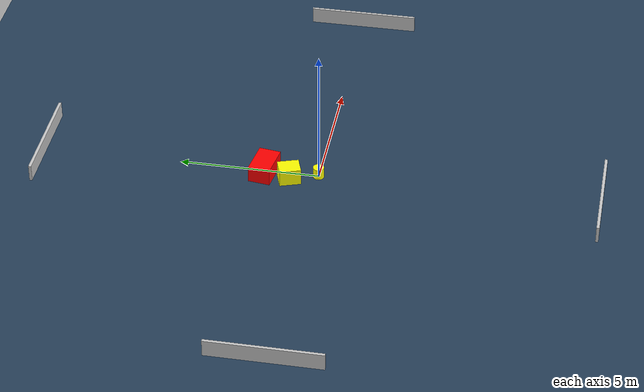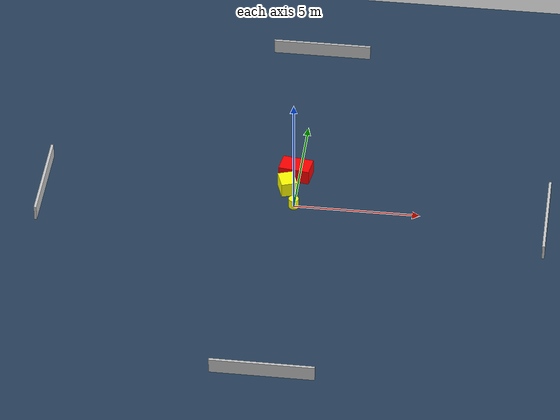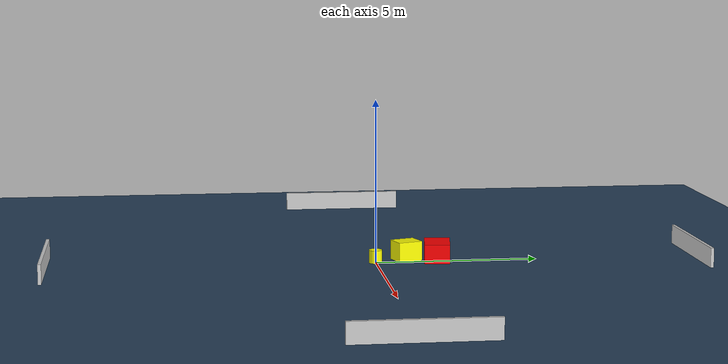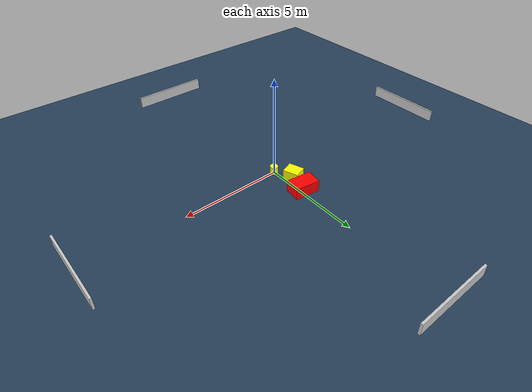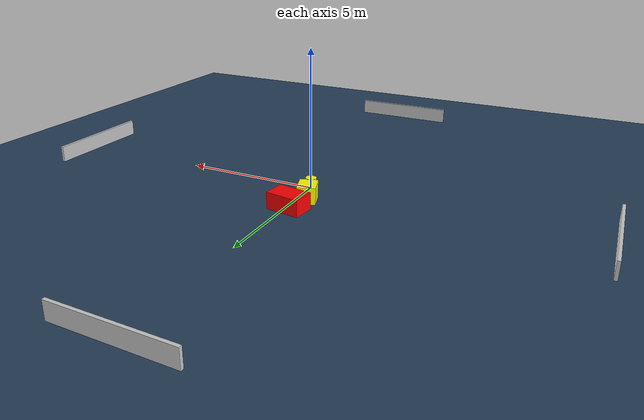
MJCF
<?xml version="1.0" ?>
<mujoco model="generated_environment">
  <option timestep="0.01" integrator="RK4" cone="elliptic"/>
  <default>
    <geom density="1"/>
  </default>
  <asset>
    <texture builtin="gradient" height="3072" name="skybox" rgb1="0.3 0.5 0.7" rgb2="0 0 0" type="skybox" width="512"/>
    <texture builtin="checker" height="300" name="groundplane" rgb1="0.2 0.3 0.4" rgb2="0.1 0.2 0.3" type="2d" width="300"/>
    <material name="groundplane" reflectance="0.2" texrepeat="5 5" texture="groundplane"/>
  </asset>
  <worldbody>
    <light dir="0 0 -1" directional="true" pos="0 0 1.5"/>
    <geom condim="3" friction="0.5 0.005 0.001" material="groundplane" name="floor" pos="0 0 0" size="0 0 0.05" type="plane"/>
    <body name="walls">
      <geom name="wall_1" condim="4" pos="-10.0 0.0 0.3" rgba="0.800000011920929 0.800000011920929 0.800000011920929 1.0" size="0.05 2.0 0.3" type="box"/>
      <geom name="wall_2" condim="4" pos="10.0 0.0 0.3" rgba="0.800000011920929 0.800000011920929 0.800000011920929 1.0" size="0.05 2.0 0.3" type="box"/>
      <geom name="wall_3" condim="4" pos="0.0 -10.0 0.3" rgba="0.800000011920929 0.800000011920929 0.800000011920929 1.0" size="2.0 0.05 0.3" type="box"/>
      <geom name="wall_4" condim="4" pos="0.0 10.0 0.3" rgba="0.800000011920929 0.800000011920929 0.800000011920929 1.0" size="2.0 0.05 0.3" type="box"/>
    </body>
    <body name="robot">
      <joint name="joint_x" type="slide" pos="0 0 0" axis="1 0 0"/>
      <joint name="joint_y" type="slide" pos="0 0 0" axis="0 1 0"/>
      <geom name="robot" type="cylinder" pos="0.0 0.0 0.2" size="0.2 0.2 0.0" mass="5.0" friction="1.0 0.005 0.0001" condim="4" rgba="1.0 1.0 0.0 1.0"/>
    </body>
    <body name="obstacle_1_movable">
      <geom name="obstacle_1_movable" condim="4" pos="-0.367344069772517 0.9972880026865987 0.3" euler="0 0 288.7359700602781" friction="0.0 0.005 0.001" rgba="1.0 1.0 0.0 1.0" size="0.38567632937607466 0.3202990334957445 0.3" type="box" mass="0.1"/>
      <joint type="free"/>
    </body>
    <body name="obstacle_2_static">
      <geom name="obstacle_2_static" condim="4" pos="-0.13959855418491834 1.926621515652359 0.3" euler="0 0 81.7167879077821" friction="0.0 0.005 0.001" rgba="1.0 0.0 0.0 1.0" size="0.39282133551424936 0.6174165399928027 0.3" type="box"/>
    </body>
  </worldbody>
  <actuator>
    <motor name="actuator_x" joint="joint_x" gear="1" ctrlrange="-1 1"/>
    <motor name="actuator_y" joint="joint_y" gear="1" ctrlrange="-1 1"/>
  </actuator>
</mujoco>
